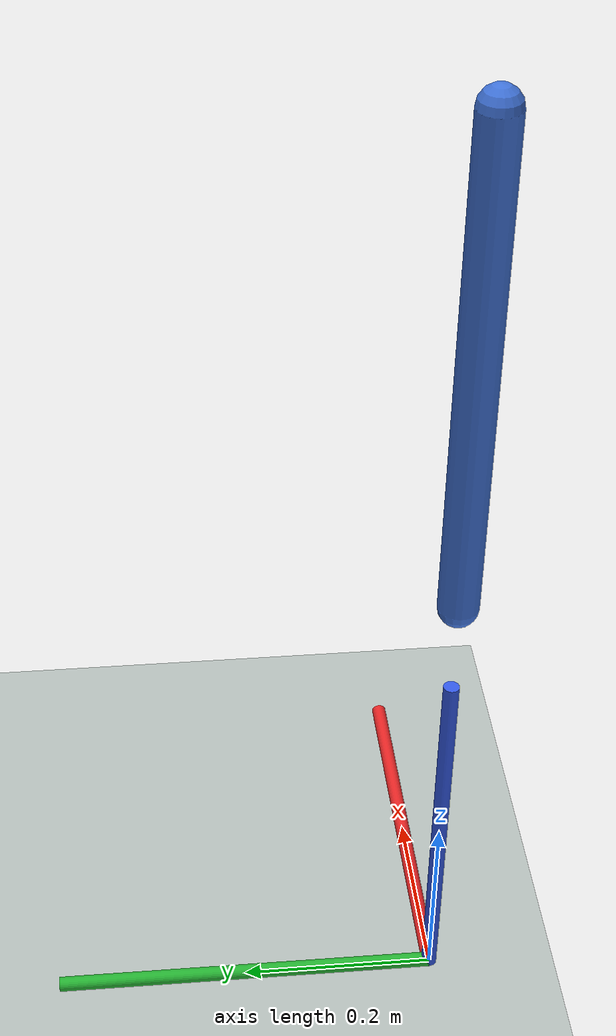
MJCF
<mujoco>
  <statistic extent="1.5" center="0 0 0.5"/>
  <compiler angle="radian"/>
  <option timestep="0.002" integrator="RK4"/>
  <visual>
    <headlight ambient="0.30 0.30 0.30" diffuse="0.35 0.35 0.35" specular="0.05 0.05 0.05"/>
    <rgba haze="0.87 0.90 0.92 1"/>
    <quality shadowsize="4096"/>
    <global azimuth="140" elevation="-20" cameraid="0"/>
  </visual>
  <asset>
    <!-- 空。上から下へのグラデーション -->
    <texture type="skybox" builtin="gradient" rgb1="0.62 0.74 0.86" rgb2="0.94 0.96 0.97" width="512" height="3072"/>

    <!-- 床のチェッカー模様。スケール感が掴めるので必ず入れる -->
    <texture type="2d" name="grid" builtin="checker" mark="edge" rgb1="0.85 0.87 0.86" rgb2="0.55 0.60 0.58" markrgb="0.35 0.38 0.36" width="300" height="300"/>

    <material name="grid" texture="grid" texrepeat="6 6" texuniform="true" reflectance="0.05"/>

    <!-- リンク用のマテリアル。色をここで一元管理できる -->
    <material name="link" rgba="0.25 0.45 0.85 1" specular="0.3" shininess="0.4"/>
  </asset>
  <worldbody>
    <!-- シーンを見るカメラ -->
    <camera name="main" pos="0 -3 1.5" mode="targetbody" target="pole"/>

    <!-- キーライト: 影を落とす主光源 -->
    <light name="key" pos="1.5 -1.5 3" dir="-0.4 0.4 -1" directional="true" diffuse="0.45 0.45 0.45" specular="0.15 0.15 0.15" castshadow="true"/>

    <!-- フィルライト: 反対側から弱く当てて影を潰しすぎない -->
    <light name="fill" pos="-2 2 2.5" dir="0.5 -0.5 -1" directional="true" diffuse="0.15 0.15 0.15" castshadow="false"/>

    <geom name="floor" type="plane" size="3 3 0.05" material="grid"/>

    <!-- 三軸 -->
    <site name="axis_x" type="cylinder" fromto="0 0 0.002  0.4 0 0.002" size="0.008" rgba="0.9 0.15 0.15 1"/>
    <site name="axis_y" type="cylinder" fromto="0 0 0.002  0 0.4 0.002" size="0.008" rgba="0.15 0.7 0.2 1"/>
    <site name="axis_z" type="cylinder" fromto="0 0 0      0 0 0.4" size="0.008" rgba="0.2 0.35 0.9 1"/>

    <!-- ロボットの定義 -->
    <body name="pole" pos="0 0 1">
      <joint name="hinge" type="hinge" axis="0 1 0" damping="0.05"/>
      <geom name="pole_geom" type="capsule" fromto="0 0 0  0 0 -0.5" size="0.02" material="link"/>
    </body>
  </worldbody>
  <actuator>
    <position name="servo" joint="hinge" kp="2000" kv="40" ctrlrange="-3.14 3.14"/>
  </actuator>
  <sensor>
    <jointpos name="theta" joint="hinge"/>
    <jointvel name="omega" joint="hinge"/>
  </sensor>
</mujoco>
